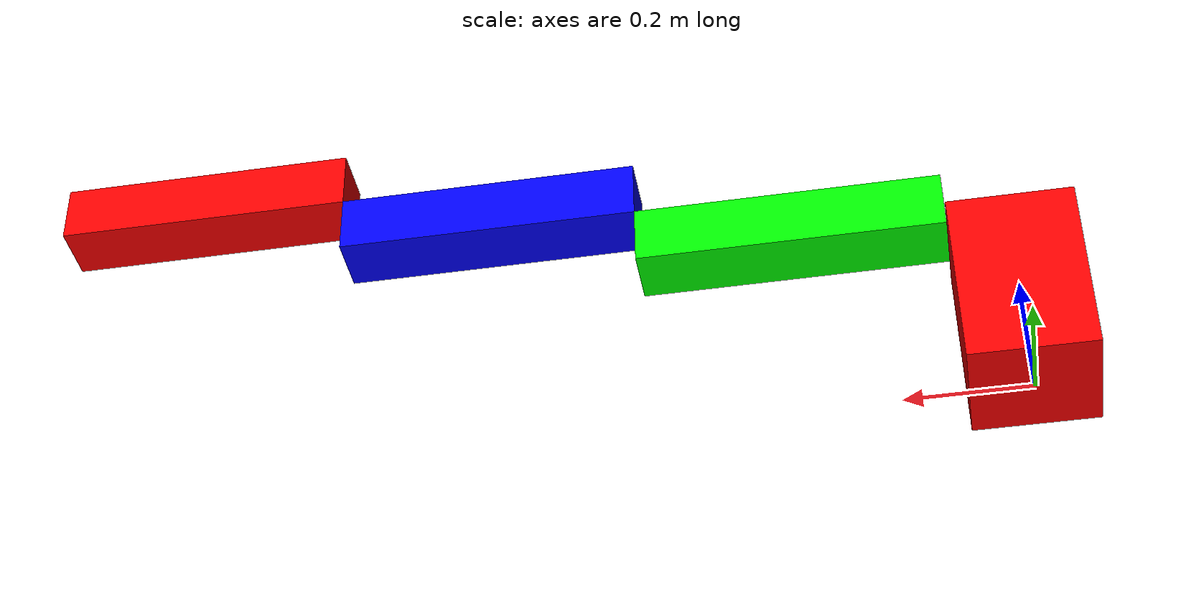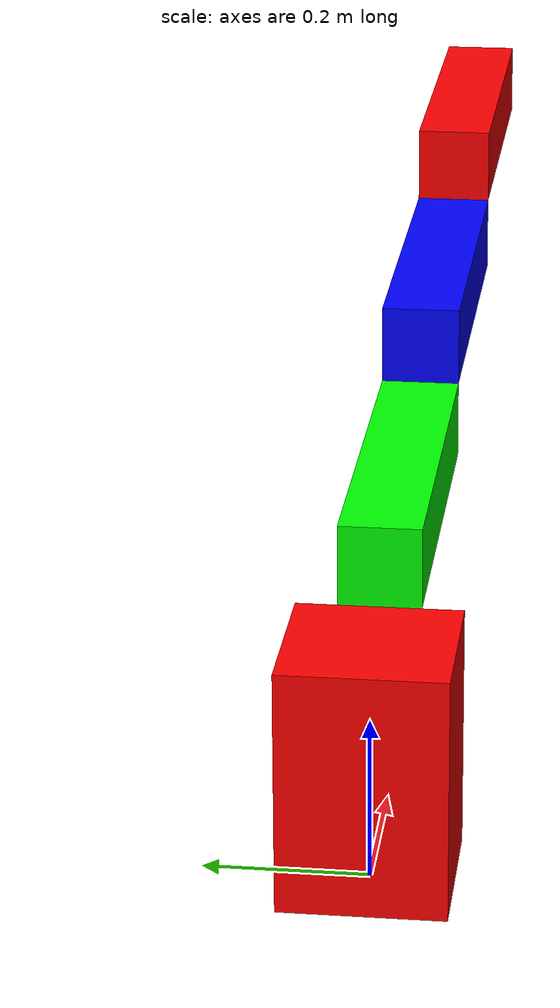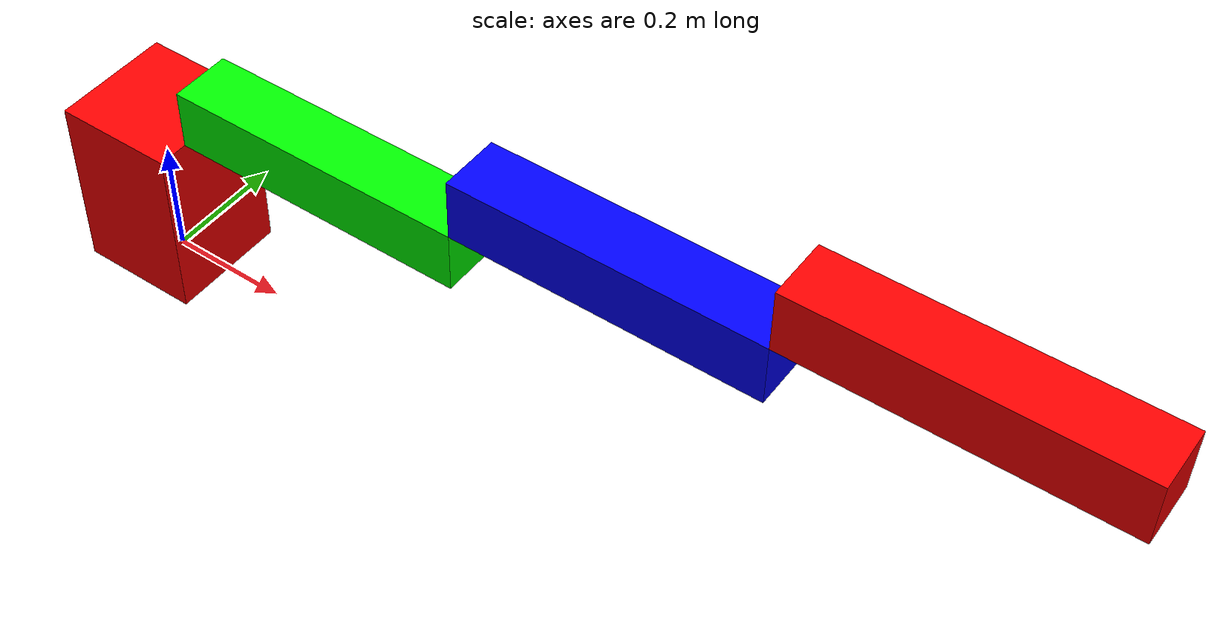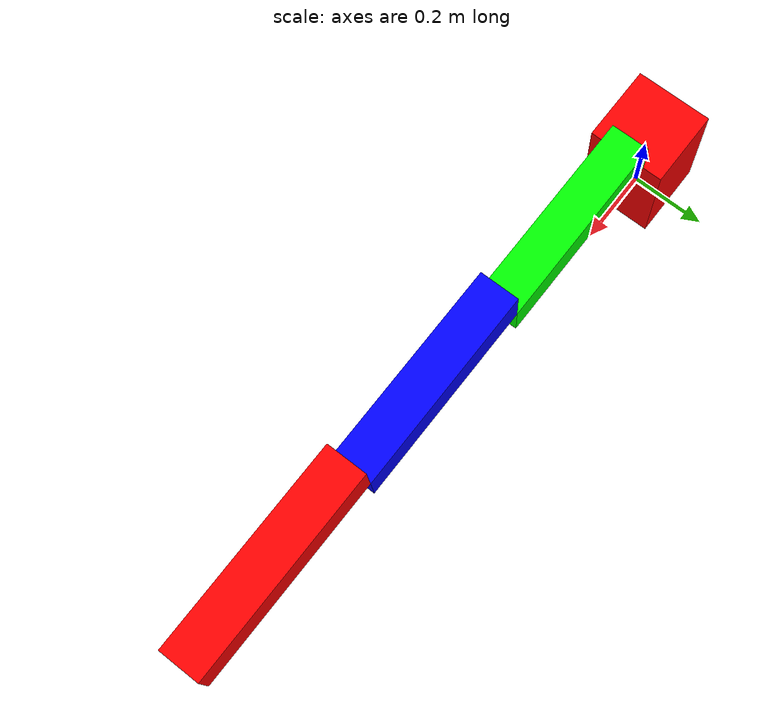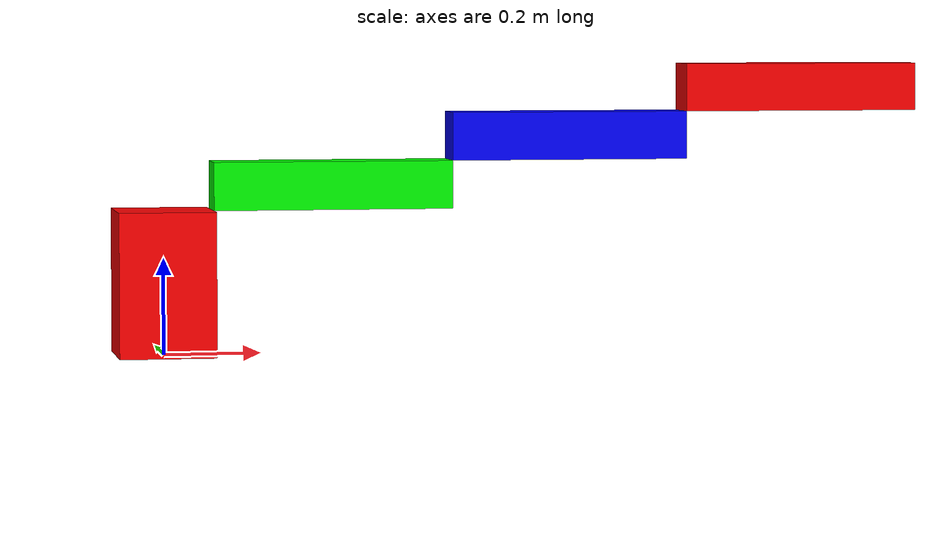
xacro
<?xml version="1.0" encoding="utf-8"?>

<robot name="robot_scara" xmlns:xacro="http://ros.org/wiki/xacro">

    <link name="world_link">
    </link>

    <joint name="world_joint" type="fixed">
        <parent link="world_link"/>
        <child link="base_link"/>
        <origin xyz="0.0 0 0.0" rpy="0 0 0"/>
    </joint>

    <link name="base_link">
        <visual>
            <origin xyz="0.0 0.0 0.15" rpy="0 0 0"/>
            <geometry>
                <box size="0.2 0.2 0.3"/>
            </geometry>
            <material name="red">
                <color rgba="1 0 0 1"/>
            </material>
        </visual>
        <collision>
            <origin xyz="0.0 0.0 0.15" rpy="0 0 0"/>
            <geometry>
                <box size="0.2 0.2 0.3"/>
            </geometry>
        </collision>
        <inertial>
            <mass value="1"/>
            <origin xyz="0.0 0.0 0.0" rpy="0 0 0"/>
            <inertia ixx="1" ixy="0" ixz="0" iyy="1" iyz="0" izz="1"/>
        </inertial>
    </link>

    <link name="link_1">

        <visual>
            <origin xyz="0.25 0.0 0.05" rpy="0.0 0.0 0.0" />
            <geometry>
                <box size="0.5 0.1 0.1" />
            </geometry>
            <material name="green">
                <color rgba="0.0 1.0 0.0 1.0" />
            </material>
        </visual>

        <collision>
            <origin xyz="0.25 0.0 0.05" rpy="0.0 0.0 0.0" />
                <geometry>
                    <box size="0.5 0.1 0.1" />
                </geometry>
        </collision>

        <inertial>
            <origin xyz="0.0 0.0 0.0" rpy="0.0 0.0 0.0" />
            <mass value="2" />
            <inertia ixx="1.0" ixy="0.0" ixz="0.0"
                iyy="1.0" iyz="0.0" izz="1.0" />
        </inertial>

    </link>

    <link name="link_2">

        <visual>
            <origin xyz="0.25 0.0 0.05" rpy="0.0 0.0 0.0" />
            <geometry>
                <box size="0.5 0.1 0.1" />
            </geometry>
            <material name="blue">
                <color rgba="0.0 0.0 1.0 1.0" />
            </material>
        </visual>

        <collision>
            <origin xyz="0.25 0.0 0.05" rpy="0.0 0.0 0.0" />
                <geometry>
                    <box size="0.5 0.1 0.1" />
                </geometry>
        </collision>

        <inertial>
            <origin xyz="0.0 0.0 0.0" rpy="0.0 0.0 0.0" />
            <mass value="1" />
            <inertia ixx="1.0" ixy="0.0" ixz="0.0"
                iyy="1.0" iyz="0.0" izz="1.0" />
        </inertial>

    </link>

    <link name="link_3">

        <visual>
            <origin xyz="0.25 0.0 0.05" rpy="0.0 0.0 0.0" />
            <geometry>
                <box size="0.5 0.1 0.1" />
            </geometry>
            <material name="red">
                <color rgba="1.0 0.0 0.0 1.0" />
            </material>
        </visual>

        <collision>
            <origin xyz="0.25 0.0 0.05" rpy="0.0 0.0 0.0" />
                <geometry>
                    <box size="0.5 0.1 0.1" />
                </geometry>
        </collision>

        <inertial>
            <origin xyz="0.0 0.0 0.0" rpy="0.0 0.0 0.0" />
            <mass value="1" />
            <inertia ixx="1.0" ixy="0.0" ixz="0.0"
                iyy="1.0" iyz="0.0" izz="1.0" />
        </inertial>

    </link>

    <joint name="link_1_joint" type="revolute">
        <parent link="base_link"/>
        <child link="link_1"/>
        <axis xyz="0 0 1"/>
        <limit lower="-1.57" upper="1.57" velocity="2.0"
            effort="1000.0"/>
        <origin xyz="0.1 0 0.3" rpy="0 0 0"/>
    </joint>

    <joint name="link_2_joint" type="revolute">
        <parent link="link_1"/>
        <child link="link_2"/>
        <axis xyz="0 0 1"/>
        <limit lower="-3.14" upper="3.14" velocity="1.0"
            effort="1000.0"/>
        <origin xyz="0.5 0 0.1" rpy="0 0 0"/>
    </joint>

    <joint name="link_3_joint" type="revolute">
        <parent link="link_2"/>
        <child link="link_3"/>
        <axis xyz="0 0 1"/>
        <limit lower="-3.14" upper="3.14" velocity="1.0"
            effort="1000.0"/>
        <origin xyz="0.5 0 0.1" rpy="0 0 0"/>
    </joint>

    <link name="P" >
    </link>

    <joint name="P_joint" type="fixed">
        <parent link="link_3"/>
        <child link="P"/>
        <origin xyz="0.5 0 0" rpy="0 0 0"/>
    </joint>

</robot>
